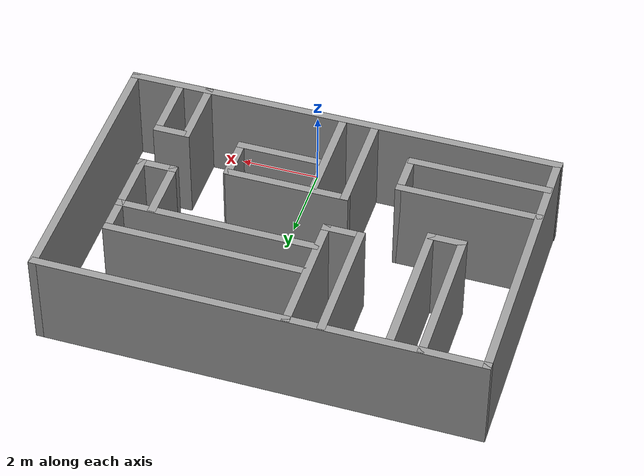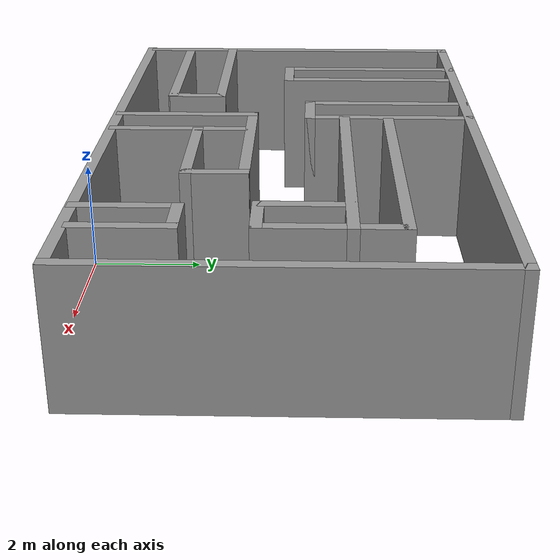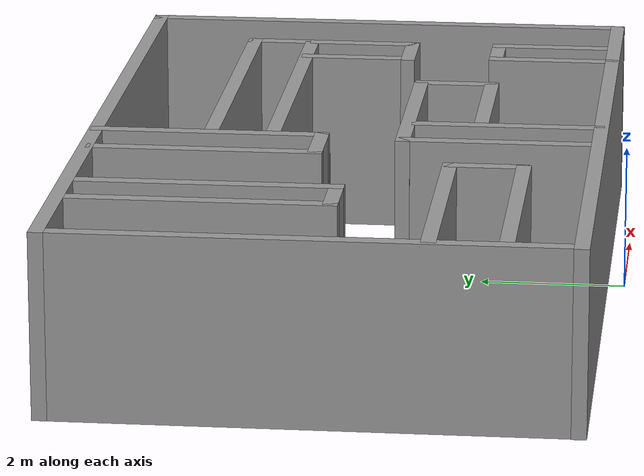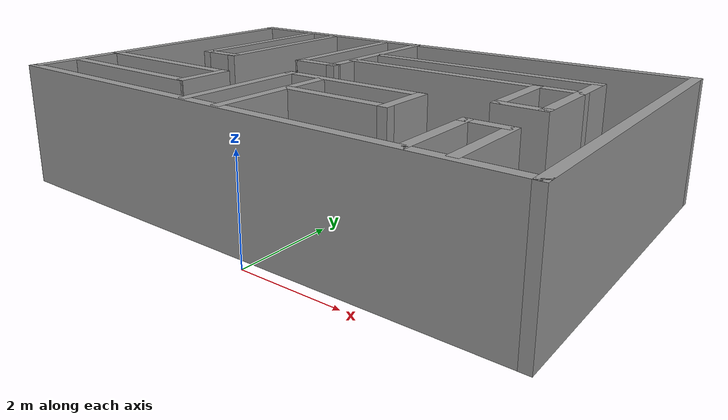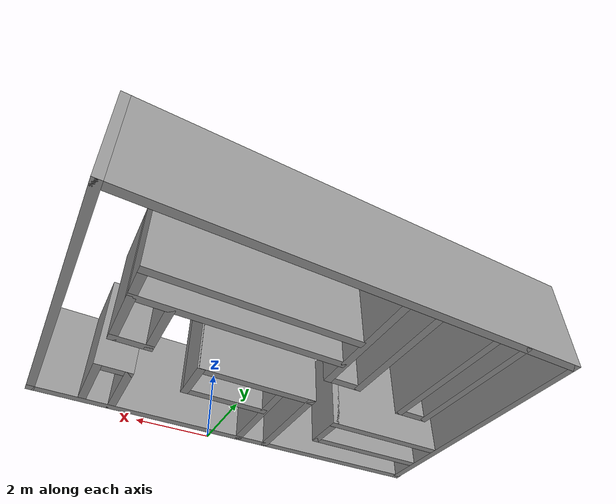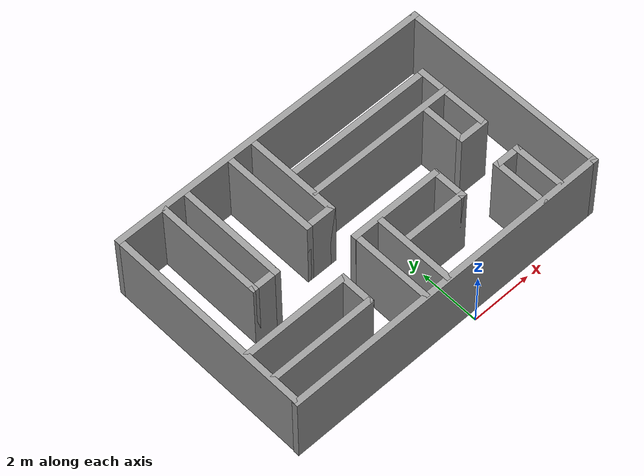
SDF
<?xml version='1.0'?>
<sdf version='1.4'>
  <model name='maze2'>
    <link name='Wall_10'>
      <collision name='Wall_10_Collision'>
        <geometry>
          <box>
            <size>2.77687 0.2 2.5</size>
          </box>
        </geometry>
        <pose>0 0 1.25 0 -0 0</pose>
      </collision>
      <visual name='Wall_10_Visual'>
        <pose>0 0 1.25 0 -0 0</pose>
        <geometry>
          <box>
            <size>2.77687 0.2 2.5</size>
          </box>
        </geometry>
        <material>
          <script>
            <uri>file://media/materials/scripts/gazebo.material</uri>
            <name>Gazebo/Grey</name>
          </script>
        </material>
      </visual>
      <velocity_decay>
        <linear>0</linear>
        <angular>0</angular>
      </velocity_decay>
      <pose>-1.59316 1.66972 0 0 -0 1.5708</pose>
    </link>
    <link name='Wall_13'>
      <collision name='Wall_13_Collision'>
        <geometry>
          <box>
            <size>3.59551 0.2 2.5</size>
          </box>
        </geometry>
        <pose>0 0 1.25 0 -0 0</pose>
      </collision>
      <visual name='Wall_13_Visual'>
        <pose>0 0 1.25 0 -0 0</pose>
        <geometry>
          <box>
            <size>3.59551 0.2 2.5</size>
          </box>
        </geometry>
        <material>
          <script>
            <uri>file://media/materials/scripts/gazebo.material</uri>
            <name>Gazebo/Grey</name>
          </script>
        </material>
      </visual>
      <velocity_decay>
        <linear>0</linear>
        <angular>0</angular>
      </velocity_decay>
      <pose>-4.45335 2.2427 0 0 -0 0</pose>
    </link>
    <link name='Wall_15'>
      <collision name='Wall_15_Collision'>
        <geometry>
          <box>
            <size>3.10607 0.2 2.5</size>
          </box>
        </geometry>
        <pose>0 0 1.25 0 -0 0</pose>
      </collision>
      <visual name='Wall_15_Visual'>
        <pose>0 0 1.25 0 -0 0</pose>
        <geometry>
          <box>
            <size>3.10607 0.2 2.5</size>
          </box>
        </geometry>
        <material>
          <script>
            <uri>file://media/materials/scripts/gazebo.material</uri>
            <name>Gazebo/Grey</name>
          </script>
        </material>
      </visual>
      <velocity_decay>
        <linear>0</linear>
        <angular>0</angular>
      </velocity_decay>
      <pose>-0.144717 2.96769 0 0 -0 0</pose>
    </link>
    <link name='Wall_17'>
      <collision name='Wall_17_Collision'>
        <geometry>
          <box>
            <size>2.62872 0.2 2.5</size>
          </box>
        </geometry>
        <pose>0 0 1.25 0 -0 0</pose>
      </collision>
      <visual name='Wall_17_Visual'>
        <pose>0 0 1.25 0 -0 0</pose>
        <geometry>
          <box>
            <size>2.62872 0.2 2.5</size>
          </box>
        </geometry>
        <material>
          <script>
            <uri>file://media/materials/scripts/gazebo.material</uri>
            <name>Gazebo/Grey</name>
          </script>
        </material>
      </visual>
      <velocity_decay>
        <linear>0</linear>
        <angular>0</angular>
      </velocity_decay>
      <pose>-0.773347 1.60131 0 0 0 -1.5708</pose>
    </link>
    <link name='Wall_19'>
      <collision name='Wall_19_Collision'>
        <geometry>
          <box>
            <size>1.1483 0.2 2.5</size>
          </box>
        </geometry>
        <pose>0 0 1.25 0 -0 0</pose>
      </collision>
      <visual name='Wall_19_Visual'>
        <pose>0 0 1.25 0 -0 0</pose>
        <geometry>
          <box>
            <size>1.1483 0.2 2.5</size>
          </box>
        </geometry>
        <material>
          <script>
            <uri>file://media/materials/scripts/gazebo.material</uri>
            <name>Gazebo/Grey</name>
          </script>
        </material>
      </visual>
      <velocity_decay>
        <linear>0</linear>
        <angular>0</angular>
      </velocity_decay>
      <pose>-2.75559 1.76855 0 0 -0 1.5708</pose>
    </link>
    <link name='Wall_21'>
      <collision name='Wall_21_Collision'>
        <geometry>
          <box>
            <size>3.71788 0.2 2.5</size>
          </box>
        </geometry>
        <pose>0 0 1.25 0 -0 0</pose>
      </collision>
      <visual name='Wall_21_Visual'>
        <pose>0 0 1.25 0 -0 0</pose>
        <geometry>
          <box>
            <size>3.71788 0.2 2.5</size>
          </box>
        </geometry>
        <material>
          <script>
            <uri>file://media/materials/scripts/gazebo.material</uri>
            <name>Gazebo/Grey</name>
          </script>
        </material>
      </visual>
      <velocity_decay>
        <linear>0</linear>
        <angular>0</angular>
      </velocity_decay>
      <pose>-4.66751 5.38237 0 0 0 -1.5708</pose>
    </link>
    <link name='Wall_22'>
      <collision name='Wall_22_Collision'>
        <geometry>
          <box>
            <size>0.973933 0.2 2.5</size>
          </box>
        </geometry>
        <pose>0 0 1.25 0 -0 0</pose>
      </collision>
      <visual name='Wall_22_Visual'>
        <pose>0 0 1.25 0 -0 0</pose>
        <geometry>
          <box>
            <size>0.973933 0.2 2.5</size>
          </box>
        </geometry>
        <material>
          <script>
            <uri>file://media/materials/scripts/gazebo.material</uri>
            <name>Gazebo/Grey</name>
          </script>
        </material>
      </visual>
      <velocity_decay>
        <linear>0</linear>
        <angular>0</angular>
      </velocity_decay>
      <pose>-4.28054 3.62343 0 0 -0 0</pose>
    </link>
    <link name='Wall_23'>
      <collision name='Wall_23_Collision'>
        <geometry>
          <box>
            <size>3.64833 0.2 2.5</size>
          </box>
        </geometry>
        <pose>0 0 1.25 0 -0 0</pose>
      </collision>
      <visual name='Wall_23_Visual'>
        <pose>0 0 1.25 0 -0 0</pose>
        <geometry>
          <box>
            <size>3.64833 0.2 2.5</size>
          </box>
        </geometry>
        <material>
          <script>
            <uri>file://media/materials/scripts/gazebo.material</uri>
            <name>Gazebo/Grey</name>
          </script>
        </material>
      </visual>
      <velocity_decay>
        <linear>0</linear>
        <angular>0</angular>
      </velocity_decay>
      <pose>-3.89357 5.34759 0 0 -0 1.5708</pose>
    </link>
    <link name='Wall_26'>
      <collision name='Wall_26_Collision'>
        <geometry>
          <box>
            <size>2.27555 0.2 2.5</size>
          </box>
        </geometry>
        <pose>0 0 1.25 0 -0 0</pose>
      </collision>
      <visual name='Wall_26_Visual'>
        <pose>0 0 1.25 0 -0 0</pose>
        <geometry>
          <box>
            <size>2.27555 0.2 2.5</size>
          </box>
        </geometry>
        <material>
          <script>
            <uri>file://media/materials/scripts/gazebo.material</uri>
            <name>Gazebo/Grey</name>
          </script>
        </material>
      </visual>
      <velocity_decay>
        <linear>0</linear>
        <angular>0</angular>
      </velocity_decay>
      <pose>0.31029 1.97003 0 0 -0 0</pose>
    </link>
    <link name='Wall_27'>
      <collision name='Wall_27_Collision'>
        <geometry>
          <box>
            <size>1.18676 0.2 2.5</size>
          </box>
        </geometry>
        <pose>0 0 1.25 0 -0 0</pose>
      </collision>
      <visual name='Wall_27_Visual'>
        <pose>0 0 1.25 0 -0 0</pose>
        <geometry>
          <box>
            <size>1.18676 0.2 2.5</size>
          </box>
        </geometry>
        <material>
          <script>
            <uri>file://media/materials/scripts/gazebo.material</uri>
            <name>Gazebo/Grey</name>
          </script>
        </material>
      </visual>
      <velocity_decay>
        <linear>0</linear>
        <angular>0</angular>
      </velocity_decay>
      <pose>1.34806 2.46341 0 0 -0 1.5708</pose>
    </link>
    <link name='Wall_29'>
      <collision name='Wall_29_Collision'>
        <geometry>
          <box>
            <size>3.26076 0.2 2.5</size>
          </box>
        </geometry>
        <pose>0 0 1.25 0 -0 0</pose>
      </collision>
      <visual name='Wall_29_Visual'>
        <pose>0 0 1.25 0 -0 0</pose>
        <geometry>
          <box>
            <size>3.26076 0.2 2.5</size>
          </box>
        </geometry>
        <material>
          <script>
            <uri>file://media/materials/scripts/gazebo.material</uri>
            <name>Gazebo/Grey</name>
          </script>
        </material>
      </visual>
      <velocity_decay>
        <linear>0</linear>
        <angular>0</angular>
      </velocity_decay>
      <pose>-2.31053 5.61113 0 0 0 -1.5708</pose>
    </link>
    <link name='Wall_3'>
      <collision name='Wall_3_Collision'>
        <geometry>
          <box>
            <size>11.0994 0.2 2.5</size>
          </box>
        </geometry>
        <pose>0 0 1.25 0 -0 0</pose>
      </collision>
      <visual name='Wall_3_Visual'>
        <pose>0 0 1.25 0 -0 0</pose>
        <geometry>
          <box>
            <size>11.0994 0.2 2.5</size>
          </box>
        </geometry>
        <material>
          <script>
            <uri>file://media/materials/scripts/gazebo.material</uri>
            <name>Gazebo/Grey</name>
          </script>
        </material>
      </visual>
      <velocity_decay>
        <linear>0</linear>
        <angular>0</angular>
      </velocity_decay>
      <pose>-0.748021 0.328876 0 0 -0 0</pose>
    </link>
    <link name='Wall_30'>
      <collision name='Wall_30_Collision'>
        <geometry>
          <box>
            <size>1.04429 0.2 2.5</size>
          </box>
        </geometry>
        <pose>0 0 1.25 0 -0 0</pose>
      </collision>
      <visual name='Wall_30_Visual'>
        <pose>0 0 1.25 0 -0 0</pose>
        <geometry>
          <box>
            <size>1.04429 0.2 2.5</size>
          </box>
        </geometry>
        <material>
          <script>
            <uri>file://media/materials/scripts/gazebo.material</uri>
            <name>Gazebo/Grey</name>
          </script>
        </material>
      </visual>
      <velocity_decay>
        <linear>0</linear>
        <angular>0</angular>
      </velocity_decay>
      <pose>-1.88838 4.08075 0 0 -0 0</pose>
    </link>
    <link name='Wall_31'>
      <collision name='Wall_31_Collision'>
        <geometry>
          <box>
            <size>3.26076 0.2 2.5</size>
          </box>
        </geometry>
        <pose>0 0 1.25 0 -0 0</pose>
      </collision>
      <visual name='Wall_31_Visual'>
        <pose>0 0 1.25 0 -0 0</pose>
        <geometry>
          <box>
            <size>3.26076 0.2 2.5</size>
          </box>
        </geometry>
        <material>
          <script>
            <uri>file://media/materials/scripts/gazebo.material</uri>
            <name>Gazebo/Grey</name>
          </script>
        </material>
      </visual>
      <velocity_decay>
        <linear>0</linear>
        <angular>0</angular>
      </velocity_decay>
      <pose>-1.46624 5.61113 0 0 -0 1.5708</pose>
    </link>
    <link name='Wall_33'>
      <collision name='Wall_33_Collision'>
        <geometry>
          <box>
            <size>4.98431 0.2 2.5</size>
          </box>
        </geometry>
        <pose>0 0 1.25 0 -0 0</pose>
      </collision>
      <visual name='Wall_33_Visual'>
        <pose>0 0 1.25 0 -0 0</pose>
        <geometry>
          <box>
            <size>4.98431 0.2 2.5</size>
          </box>
        </geometry>
        <material>
          <script>
            <uri>file://media/materials/scripts/gazebo.material</uri>
            <name>Gazebo/Grey</name>
          </script>
        </material>
      </visual>
      <velocity_decay>
        <linear>0</linear>
        <angular>0</angular>
      </velocity_decay>
      <pose>1.06663 5.59344 0 0 -0 0</pose>
    </link>
    <link name='Wall_34'>
      <collision name='Wall_34_Collision'>
        <geometry>
          <box>
            <size>1.04429 0.2 2.5</size>
          </box>
        </geometry>
        <pose>0 0 1.25 0 -0 0</pose>
      </collision>
      <visual name='Wall_34_Visual'>
        <pose>0 0 1.25 0 -0 0</pose>
        <geometry>
          <box>
            <size>1.04429 0.2 2.5</size>
          </box>
        </geometry>
        <material>
          <script>
            <uri>file://media/materials/scripts/gazebo.material</uri>
            <name>Gazebo/Grey</name>
          </script>
        </material>
      </visual>
      <velocity_decay>
        <linear>0</linear>
        <angular>0</angular>
      </velocity_decay>
      <pose>3.45879 5.17129 0 0 0 -1.5708</pose>
    </link>
    <link name='Wall_35'>
      <collision name='Wall_35_Collision'>
        <geometry>
          <box>
            <size>5.05467 0.2 2.5</size>
          </box>
        </geometry>
        <pose>0 0 1.25 0 -0 0</pose>
      </collision>
      <visual name='Wall_35_Visual'>
        <pose>0 0 1.25 0 -0 0</pose>
        <geometry>
          <box>
            <size>5.05467 0.2 2.5</size>
          </box>
        </geometry>
        <material>
          <script>
            <uri>file://media/materials/scripts/gazebo.material</uri>
            <name>Gazebo/Grey</name>
          </script>
        </material>
      </visual>
      <velocity_decay>
        <linear>0</linear>
        <angular>0</angular>
      </velocity_decay>
      <pose>1.03146 4.74915 0 0 -0 3.14159</pose>
    </link>
    <link name='Wall_4'>
      <collision name='Wall_4_Collision'>
        <geometry>
          <box>
            <size>7.03885 0.2 2.5</size>
          </box>
        </geometry>
        <pose>0 0 1.25 0 -0 0</pose>
      </collision>
      <visual name='Wall_4_Visual'>
        <pose>0 0 1.25 0 -0 0</pose>
        <geometry>
          <box>
            <size>7.03885 0.2 2.5</size>
          </box>
        </geometry>
        <material>
          <script>
            <uri>file://media/materials/scripts/gazebo.material</uri>
            <name>Gazebo/Grey</name>
          </script>
        </material>
      </visual>
      <velocity_decay>
        <linear>0</linear>
        <angular>0</angular>
      </velocity_decay>
      <pose>4.70167 3.7483 0 0 -0 1.5708</pose>
    </link>
    <link name='Wall_40'>
      <collision name='Wall_40_Collision'>
        <geometry>
          <box>
            <size>1.64233 0.2 2.5</size>
          </box>
        </geometry>
        <pose>0 0 1.25 0 -0 0</pose>
      </collision>
      <visual name='Wall_40_Visual'>
        <pose>0 0 1.25 0 -0 0</pose>
        <geometry>
          <box>
            <size>1.64233 0.2 2.5</size>
          </box>
        </geometry>
        <material>
          <script>
            <uri>file://media/materials/scripts/gazebo.material</uri>
            <name>Gazebo/Grey</name>
          </script>
        </material>
      </visual>
      <velocity_decay>
        <linear>0</linear>
        <angular>0</angular>
      </velocity_decay>
      <pose>2.64968 3.99281 0 0 0 -1.5708</pose>
    </link>
    <link name='Wall_41'>
      <collision name='Wall_41_Collision'>
        <geometry>
          <box>
            <size>1.00911 0.2 2.5</size>
          </box>
        </geometry>
        <pose>0 0 1.25 0 -0 0</pose>
      </collision>
      <visual name='Wall_41_Visual'>
        <pose>0 0 1.25 0 -0 0</pose>
        <geometry>
          <box>
            <size>1.00911 0.2 2.5</size>
          </box>
        </geometry>
        <material>
          <script>
            <uri>file://media/materials/scripts/gazebo.material</uri>
            <name>Gazebo/Grey</name>
          </script>
        </material>
      </visual>
      <velocity_decay>
        <linear>0</linear>
        <angular>0</angular>
      </velocity_decay>
      <pose>3.05423 3.27164 0 0 -0 0</pose>
    </link>
    <link name='Wall_42'>
      <collision name='Wall_42_Collision'>
        <geometry>
          <box>
            <size>1.60715 0.2 2.5</size>
          </box>
        </geometry>
        <pose>0 0 1.25 0 -0 0</pose>
      </collision>
      <visual name='Wall_42_Visual'>
        <pose>0 0 1.25 0 -0 0</pose>
        <geometry>
          <box>
            <size>1.60715 0.2 2.5</size>
          </box>
        </geometry>
        <material>
          <script>
            <uri>file://media/materials/scripts/gazebo.material</uri>
            <name>Gazebo/Grey</name>
          </script>
        </material>
      </visual>
      <velocity_decay>
        <linear>0</linear>
        <angular>0</angular>
      </velocity_decay>
      <pose>3.45879 3.97522 0 0 -0 1.5708</pose>
    </link>
    <link name='Wall_46'>
      <collision name='Wall_46_Collision'>
        <geometry>
          <box>
            <size>1.8534 0.2 2.5</size>
          </box>
        </geometry>
        <pose>0 0 1.25 0 -0 0</pose>
      </collision>
      <visual name='Wall_46_Visual'>
        <pose>0 0 1.25 0 -0 0</pose>
        <geometry>
          <box>
            <size>1.8534 0.2 2.5</size>
          </box>
        </geometry>
        <material>
          <script>
            <uri>file://media/materials/scripts/gazebo.material</uri>
            <name>Gazebo/Grey</name>
          </script>
        </material>
      </visual>
      <velocity_decay>
        <linear>0</linear>
        <angular>0</angular>
      </velocity_decay>
      <pose>2.75521 1.1785 0 0 -0 1.5708</pose>
    </link>
    <link name='Wall_47'>
      <collision name='Wall_47_Collision'>
        <geometry>
          <box>
            <size>0.938754 0.2 2.5</size>
          </box>
        </geometry>
        <pose>0 0 1.25 0 -0 0</pose>
      </collision>
      <visual name='Wall_47_Visual'>
        <pose>0 0 1.25 0 -0 0</pose>
        <geometry>
          <box>
            <size>0.938754 0.2 2.5</size>
          </box>
        </geometry>
        <material>
          <script>
            <uri>file://media/materials/scripts/gazebo.material</uri>
            <name>Gazebo/Grey</name>
          </script>
        </material>
      </visual>
      <velocity_decay>
        <linear>0</linear>
        <angular>0</angular>
      </velocity_decay>
      <pose>3.12459 2.00521 0 0 -0 0</pose>
    </link>
    <link name='Wall_48'>
      <collision name='Wall_48_Collision'>
        <geometry>
          <box>
            <size>1.74787 0.2 2.5</size>
          </box>
        </geometry>
        <pose>0 0 1.25 0 -0 0</pose>
      </collision>
      <visual name='Wall_48_Visual'>
        <pose>0 0 1.25 0 -0 0</pose>
        <geometry>
          <box>
            <size>1.74787 0.2 2.5</size>
          </box>
        </geometry>
        <material>
          <script>
            <uri>file://media/materials/scripts/gazebo.material</uri>
            <name>Gazebo/Grey</name>
          </script>
        </material>
      </visual>
      <velocity_decay>
        <linear>0</linear>
        <angular>0</angular>
      </velocity_decay>
      <pose>3.49397 1.23127 0 0 0 -1.5708</pose>
    </link>
    <link name='Wall_5'>
      <collision name='Wall_5_Collision'>
        <geometry>
          <box>
            <size>11.0834 0.2 2.5</size>
          </box>
        </geometry>
        <pose>0 0 1.25 0 -0 0</pose>
      </collision>
      <visual name='Wall_5_Visual'>
        <pose>0 0 1.25 0 -0 0</pose>
        <geometry>
          <box>
            <size>11.0834 0.2 2.5</size>
          </box>
        </geometry>
        <material>
          <script>
            <uri>file://media/materials/scripts/gazebo.material</uri>
            <name>Gazebo/Grey</name>
          </script>
        </material>
      </visual>
      <velocity_decay>
        <linear>0</linear>
        <angular>0</angular>
      </velocity_decay>
      <pose>-0.740016 7.16773 0 0 -0 3.14159</pose>
    </link>
    <link name='Wall_6'>
      <collision name='Wall_6_Collision'>
        <geometry>
          <box>
            <size>6.92985 0.2 2.5</size>
          </box>
        </geometry>
        <pose>0 0 1.25 0 -0 0</pose>
      </collision>
      <visual name='Wall_6_Visual'>
        <pose>0 0 1.25 0 -0 0</pose>
        <geometry>
          <box>
            <size>6.92985 0.2 2.5</size>
          </box>
        </geometry>
        <material>
          <script>
            <uri>file://media/materials/scripts/gazebo.material</uri>
            <name>Gazebo/Grey</name>
          </script>
        </material>
      </visual>
      <velocity_decay>
        <linear>0</linear>
        <angular>0</angular>
      </velocity_decay>
      <pose>-6.1817 3.8028 0 0 0 -1.5708</pose>
    </link>
    <link name='Wall_8'>
      <collision name='Wall_8_Collision'>
        <geometry>
          <box>
            <size>3.56493 0.2 2.5</size>
          </box>
        </geometry>
        <pose>0 0 1.25 0 -0 0</pose>
      </collision>
      <visual name='Wall_8_Visual'>
        <pose>0 0 1.25 0 -0 0</pose>
        <geometry>
          <box>
            <size>3.56493 0.2 2.5</size>
          </box>
        </geometry>
        <material>
          <script>
            <uri>file://media/materials/scripts/gazebo.material</uri>
            <name>Gazebo/Grey</name>
          </script>
        </material>
      </visual>
      <velocity_decay>
        <linear>0</linear>
        <angular>0</angular>
      </velocity_decay>
      <pose>-4.46865 1.26382 0 0 -0 0</pose>
    </link>
    <static>1</static>
  </model>
</sdf>
